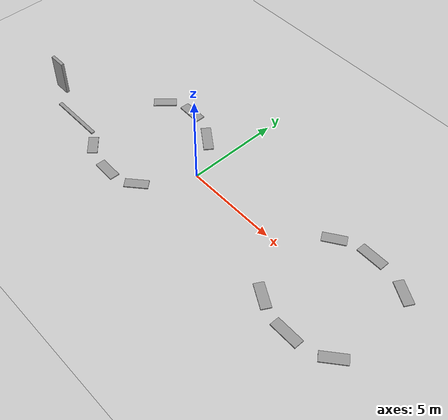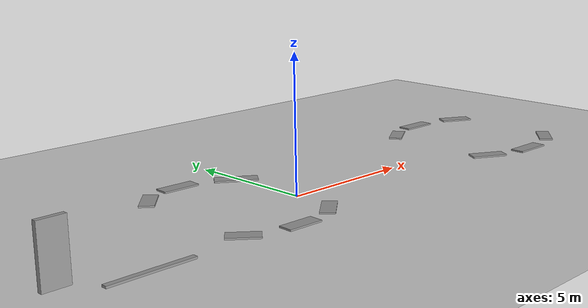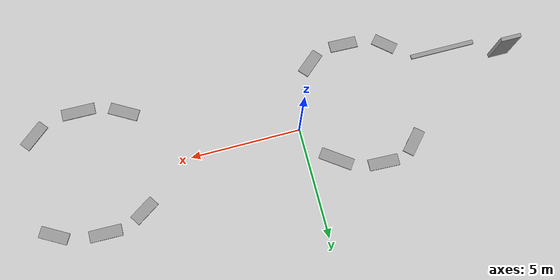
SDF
<sdf version="1.6">
 <world name="default">
  <model name="ground_plane">
   <static>1</static>
   <link name="link">
    <collision name="collision">
     <geometry><plane><normal>0 0 1</normal><size>100 100</size></plane></geometry>
     <surface><friction><ode><mu>100</mu><mu2>50</mu2></ode></friction></surface>
    </collision>
    <visual name="visual">
     <cast_shadows>0</cast_shadows>
     <geometry><plane><normal>0 0 1</normal><size>100 100</size></plane></geometry>
     <material>
      <script><uri>file://media/materials/scripts/gazebo.material</uri><name>Gazebo/Grey</name></script>
     </material>
    </visual>
   </link>
  </model>
  <model name="brick_box_3x1x3">
   <link name="link_1_clone_3">
    <pose>-0.307076 2.03145 0.5 0 -0 0</pose>
    <inertial>
     <mass>1</mass>
     <inertia>
      <ixx>0.166667</ixx>
      <ixy>0</ixy>
      <ixz>0</ixz>
      <iyy>0.166667</iyy>
      <iyz>0</iyz>
      <izz>0.166667</izz>
     </inertia>
    </inertial>
    <visual name="visual">
     <pose>0 0 -0.5 0 -0 0</pose>
     <geometry><box><size>3 0.2 0.1</size></box></geometry>
     <material>
      <lighting>1</lighting>
      <script><uri>file://media/materials/scripts/gazebo.material</uri><name>Gazebo/Grey</name></script>
      <ambient>0.3 0.3 0.3 1</ambient>
      <diffuse>0.7 0.7 0.7 1</diffuse>
      <specular>0.01 0.01 0.01 1</specular>
      <emissive>0 0 0 1</emissive>
      <shader type="vertex"><normal_map>__default__</normal_map></shader>
     </material>
    </visual>
    <collision name="collision">
     <pose>0 0 -0.5 0 -0 0</pose>
     <geometry><box><size>3 0.2 0.2</size></box></geometry>
     <surface>
      <friction>
       <ode><mu>1</mu><mu2>1</mu2><fdir1>0 0 0</fdir1><slip1>0</slip1><slip2>0</slip2></ode>
       <torsional>
        <coefficient>1</coefficient>
        <patch_radius>0</patch_radius>
        <surface_radius>0</surface_radius>
        <use_patch_radius>1</use_patch_radius>
        <ode><slip>0</slip></ode>
       </torsional>
      </friction>
      <bounce><restitution_coefficient>0</restitution_coefficient><threshold>1e+06</threshold></bounce>
      <contact>
       <collide_without_contact>0</collide_without_contact>
       <collide_without_contact_bitmask>1</collide_without_contact_bitmask>
       <collide_bitmask>1</collide_bitmask>
       <ode>
        <soft_cfm>0</soft_cfm>
        <soft_erp>0.2</soft_erp>
        <kp>1e+13</kp>
        <kd>1</kd>
        <max_vel>0.01</max_vel>
        <min_depth>0</min_depth>
       </ode>
       <bullet>
        <split_impulse>1</split_impulse>
        <split_impulse_penetration_threshold>-0.01</split_impulse_penetration_threshold>
        <soft_cfm>0</soft_cfm>
        <soft_erp>0.2</soft_erp>
        <kp>1e+13</kp>
        <kd>1</kd>
       </bullet>
      </contact>
     </surface>
    </collision>
   </link>
   <static>1</static>
   <pose>-7.10254 -4.10597 0 0 -0 0</pose>
  </model>
  <model name="unit_box_0_1_0">
   <link name="link">
    <pose>0.511454 -1.95803 -0.224295 0 -0 0.861543</pose>
    <inertial>
     <mass>0.0321225</mass>
     <inertia>
      <ixx>0.00313426</ixx>
      <ixy>0</ixy>
      <ixz>0</ixz>
      <iyy>0.000713489</iyy>
      <iyz>0</iyz>
      <izz>0.00382977</izz>
     </inertia>
    </inertial>
    <visual name="visual">
     <geometry><box><size>0.512987 1.08053 0.057955</size></box></geometry>
     <material>
      <script><name>Gazebo/Grey</name><uri>file://media/materials/scripts/gazebo.material</uri></script>
      <ambient>0.3 0.3 0.3 1</ambient>
      <diffuse>0.7 0.7 0.7 1</diffuse>
      <specular>0.01 0.01 0.01 1</specular>
      <emissive>0 0 0 1</emissive>
      <shader type="vertex"><normal_map>__default__</normal_map></shader>
     </material>
    </visual>
    <collision name="collision">
     <geometry><box><size>0.512987 1.08053 0.057955</size></box></geometry>
     <surface>
      <friction>
       <ode><mu>1</mu><mu2>1</mu2><fdir1>0 0 0</fdir1><slip1>0</slip1><slip2>0</slip2></ode>
       <torsional>
        <coefficient>1</coefficient>
        <patch_radius>0</patch_radius>
        <surface_radius>0</surface_radius>
        <use_patch_radius>1</use_patch_radius>
        <ode><slip>0</slip></ode>
       </torsional>
      </friction>
      <bounce><restitution_coefficient>0</restitution_coefficient><threshold>1e+06</threshold></bounce>
      <contact>
       <collide_without_contact>0</collide_without_contact>
       <collide_without_contact_bitmask>1</collide_without_contact_bitmask>
       <collide_bitmask>1</collide_bitmask>
       <ode>
        <soft_cfm>0</soft_cfm>
        <soft_erp>0.2</soft_erp>
        <kp>1e+13</kp>
        <kd>1</kd>
        <max_vel>0.01</max_vel>
        <min_depth>0</min_depth>
       </ode>
       <bullet>
        <split_impulse>1</split_impulse>
        <split_impulse_penetration_threshold>-0.01</split_impulse_penetration_threshold>
        <soft_cfm>0</soft_cfm>
        <soft_erp>0.2</soft_erp>
        <kp>1e+13</kp>
        <kd>1</kd>
       </bullet>
      </contact>
     </surface>
    </collision>
   </link>
   <link name="link_clone">
    <pose>2.34541 -2.41387 -0.224295 0 -0 1.54767</pose>
    <inertial>
     <mass>0.0371726</mass>
     <inertia>
      <ixx>0.00485357</ixx>
      <ixy>0</ixy>
      <ixz>0</ixz>
      <iyy>0.00082566</iyy>
      <iyz>0</iyz>
      <izz>0.00565843</izz>
     </inertia>
    </inertial>
    <visual name="visual">
     <geometry><box><size>0.512987 1.2504 0.057955</size></box></geometry>
     <material>
      <script><name>Gazebo/Grey</name><uri>file://media/materials/scripts/gazebo.material</uri></script>
      <ambient>0.3 0.3 0.3 1</ambient>
      <diffuse>0.7 0.7 0.7 1</diffuse>
      <specular>0.01 0.01 0.01 1</specular>
      <emissive>0 0 0 1</emissive>
      <shader type="vertex"><normal_map>__default__</normal_map></shader>
     </material>
    </visual>
    <collision name="collision">
     <geometry><box><size>0.512987 1.2504 0.057955</size></box></geometry>
     <surface>
      <friction>
       <ode><mu>1</mu><mu2>1</mu2><fdir1>0 0 0</fdir1><slip1>0</slip1><slip2>0</slip2></ode>
       <torsional>
        <coefficient>1</coefficient>
        <patch_radius>0</patch_radius>
        <surface_radius>0</surface_radius>
        <use_patch_radius>1</use_patch_radius>
        <ode><slip>0</slip></ode>
       </torsional>
      </friction>
      <bounce><restitution_coefficient>0</restitution_coefficient><threshold>1e+06</threshold></bounce>
      <contact>
       <collide_without_contact>0</collide_without_contact>
       <collide_without_contact_bitmask>1</collide_without_contact_bitmask>
       <collide_bitmask>1</collide_bitmask>
       <ode>
        <soft_cfm>0</soft_cfm>
        <soft_erp>0.2</soft_erp>
        <kp>1e+13</kp>
        <kd>1</kd>
        <max_vel>0.01</max_vel>
        <min_depth>0</min_depth>
       </ode>
       <bullet>
        <split_impulse>1</split_impulse>
        <split_impulse_penetration_threshold>-0.01</split_impulse_penetration_threshold>
        <soft_cfm>0</soft_cfm>
        <soft_erp>0.2</soft_erp>
        <kp>1e+13</kp>
        <kd>1</kd>
       </bullet>
      </contact>
     </surface>
    </collision>
   </link>
   <link name="link_clone_clone">
    <pose>4.02802 -1.90956 -0.224295 0 -0 2.29291</pose>
    <inertial>
     <mass>0.0358186</mass>
     <inertia>
      <ixx>0.00434301</ixx>
      <ixy>0</ixy>
      <ixz>0</ixz>
      <iyy>0.000795586</iyy>
      <iyz>0</iyz>
      <izz>0.00511856</izz>
     </inertia>
    </inertial>
    <visual name="visual">
     <geometry><box><size>0.512987 1.20486 0.057955</size></box></geometry>
     <material>
      <script><name>Gazebo/Grey</name><uri>file://media/materials/scripts/gazebo.material</uri></script>
      <ambient>0.3 0.3 0.3 1</ambient>
      <diffuse>0.7 0.7 0.7 1</diffuse>
      <specular>0.01 0.01 0.01 1</specular>
      <emissive>0 0 0 1</emissive>
      <shader type="vertex"><normal_map>__default__</normal_map></shader>
     </material>
    </visual>
    <collision name="collision">
     <geometry><box><size>0.512987 1.20486 0.057955</size></box></geometry>
     <surface>
      <friction>
       <ode><mu>1</mu><mu2>1</mu2><fdir1>0 0 0</fdir1><slip1>0</slip1><slip2>0</slip2></ode>
       <torsional>
        <coefficient>1</coefficient>
        <patch_radius>0</patch_radius>
        <surface_radius>0</surface_radius>
        <use_patch_radius>1</use_patch_radius>
        <ode><slip>0</slip></ode>
       </torsional>
      </friction>
      <bounce><restitution_coefficient>0</restitution_coefficient><threshold>1e+06</threshold></bounce>
      <contact>
       <collide_without_contact>0</collide_without_contact>
       <collide_without_contact_bitmask>1</collide_without_contact_bitmask>
       <collide_bitmask>1</collide_bitmask>
       <ode>
        <soft_cfm>0</soft_cfm>
        <soft_erp>0.2</soft_erp>
        <kp>1e+13</kp>
        <kd>1</kd>
        <max_vel>0.01</max_vel>
        <min_depth>0</min_depth>
       </ode>
       <bullet>
        <split_impulse>1</split_impulse>
        <split_impulse_penetration_threshold>-0.01</split_impulse_penetration_threshold>
        <soft_cfm>0</soft_cfm>
        <soft_erp>0.2</soft_erp>
        <kp>1e+13</kp>
        <kd>1</kd>
       </bullet>
      </contact>
     </surface>
    </collision>
   </link>
   <link name="link_clone_clone_clone">
    <pose>0.568221 2.76683 -0.224295 0 -0 2.41169</pose>
    <inertial>
     <mass>0.0358186</mass>
     <inertia>
      <ixx>0.00434301</ixx>
      <ixy>0</ixy>
      <ixz>0</ixz>
      <iyy>0.000795586</iyy>
      <iyz>0</iyz>
      <izz>0.00511856</izz>
     </inertia>
    </inertial>
    <visual name="visual">
     <geometry><box><size>0.512987 1.20486 0.057955</size></box></geometry>
     <material>
      <script><name>Gazebo/Grey</name><uri>file://media/materials/scripts/gazebo.material</uri></script>
      <ambient>0.3 0.3 0.3 1</ambient>
      <diffuse>0.7 0.7 0.7 1</diffuse>
      <specular>0.01 0.01 0.01 1</specular>
      <emissive>0 0 0 1</emissive>
      <shader type="vertex"><normal_map>__default__</normal_map></shader>
     </material>
    </visual>
    <collision name="collision">
     <geometry><box><size>0.512987 1.20486 0.057955</size></box></geometry>
     <surface>
      <friction>
       <ode><mu>1</mu><mu2>1</mu2><fdir1>0 0 0</fdir1><slip1>0</slip1><slip2>0</slip2></ode>
       <torsional>
        <coefficient>1</coefficient>
        <patch_radius>0</patch_radius>
        <surface_radius>0</surface_radius>
        <use_patch_radius>1</use_patch_radius>
        <ode><slip>0</slip></ode>
       </torsional>
      </friction>
      <bounce><restitution_coefficient>0</restitution_coefficient><threshold>1e+06</threshold></bounce>
      <contact>
       <collide_without_contact>0</collide_without_contact>
       <collide_without_contact_bitmask>1</collide_without_contact_bitmask>
       <collide_bitmask>1</collide_bitmask>
       <ode>
        <soft_cfm>0</soft_cfm>
        <soft_erp>0.2</soft_erp>
        <kp>1e+13</kp>
        <kd>1</kd>
        <max_vel>0.01</max_vel>
        <min_depth>0</min_depth>
       </ode>
       <bullet>
        <split_impulse>1</split_impulse>
        <split_impulse_penetration_threshold>-0.01</split_impulse_penetration_threshold>
        <soft_cfm>0</soft_cfm>
        <soft_erp>0.2</soft_erp>
        <kp>1e+13</kp>
        <kd>1</kd>
       </bullet>
      </contact>
     </surface>
    </collision>
   </link>
   <link name="link_clone_clone_clone_clone">
    <pose>2.12787 3.33108 -0.224295 0 -0 1.53724</pose>
    <inertial>
     <mass>0.0399724</mass>
     <inertia>
      <ixx>0.00603323</ixx>
      <ixy>0</ixy>
      <ixz>0</ixz>
      <iyy>0.000887849</iyy>
      <iyz>0</iyz>
      <izz>0.00689872</izz>
     </inertia>
    </inertial>
    <visual name="visual">
     <geometry><box><size>0.512987 1.34458 0.057955</size></box></geometry>
     <material>
      <script><name>Gazebo/Grey</name><uri>file://media/materials/scripts/gazebo.material</uri></script>
      <ambient>0.3 0.3 0.3 1</ambient>
      <diffuse>0.7 0.7 0.7 1</diffuse>
      <specular>0.01 0.01 0.01 1</specular>
      <emissive>0 0 0 1</emissive>
      <shader type="vertex"><normal_map>__default__</normal_map></shader>
     </material>
    </visual>
    <collision name="collision">
     <geometry><box><size>0.512987 1.34458 0.057955</size></box></geometry>
     <surface>
      <friction>
       <ode><mu>1</mu><mu2>1</mu2><fdir1>0 0 0</fdir1><slip1>0</slip1><slip2>0</slip2></ode>
       <torsional>
        <coefficient>1</coefficient>
        <patch_radius>0</patch_radius>
        <surface_radius>0</surface_radius>
        <use_patch_radius>1</use_patch_radius>
        <ode><slip>0</slip></ode>
       </torsional>
      </friction>
      <bounce><restitution_coefficient>0</restitution_coefficient><threshold>1e+06</threshold></bounce>
      <contact>
       <collide_without_contact>0</collide_without_contact>
       <collide_without_contact_bitmask>1</collide_without_contact_bitmask>
       <collide_bitmask>1</collide_bitmask>
       <ode>
        <soft_cfm>0</soft_cfm>
        <soft_erp>0.2</soft_erp>
        <kp>1e+13</kp>
        <kd>1</kd>
        <max_vel>0.01</max_vel>
        <min_depth>0</min_depth>
       </ode>
       <bullet>
        <split_impulse>1</split_impulse>
        <split_impulse_penetration_threshold>-0.01</split_impulse_penetration_threshold>
        <soft_cfm>0</soft_cfm>
        <soft_erp>0.2</soft_erp>
        <kp>1e+13</kp>
        <kd>1</kd>
       </bullet>
      </contact>
     </surface>
    </collision>
   </link>
   <link name="link_clone_clone_clone_clone_0">
    <pose>4.08515 2.65239 -0.224295 0 -0 0.950487</pose>
    <inertial>
     <mass>0.0447953</mass>
     <inertia>
      <ixx>0.00848789</ixx>
      <ixy>0</ixy>
      <ixz>0</ixz>
      <iyy>0.000994971</iyy>
      <iyz>0</iyz>
      <izz>0.00945781</izz>
     </inertia>
    </inertial>
    <visual name="visual">
     <geometry><box><size>0.512987 1.50681 0.057955</size></box></geometry>
     <material>
      <script><name>Gazebo/Grey</name><uri>file://media/materials/scripts/gazebo.material</uri></script>
      <ambient>0.3 0.3 0.3 1</ambient>
      <diffuse>0.7 0.7 0.7 1</diffuse>
      <specular>0.01 0.01 0.01 1</specular>
      <emissive>0 0 0 1</emissive>
      <shader type="vertex"><normal_map>__default__</normal_map></shader>
     </material>
    </visual>
    <collision name="collision">
     <geometry><box><size>0.512987 1.50681 0.057955</size></box></geometry>
     <surface>
      <friction>
       <ode><mu>1</mu><mu2>1</mu2><fdir1>0 0 0</fdir1><slip1>0</slip1><slip2>0</slip2></ode>
       <torsional>
        <coefficient>1</coefficient>
        <patch_radius>0</patch_radius>
        <surface_radius>0</surface_radius>
        <use_patch_radius>1</use_patch_radius>
        <ode><slip>0</slip></ode>
       </torsional>
      </friction>
      <bounce><restitution_coefficient>0</restitution_coefficient><threshold>1e+06</threshold></bounce>
      <contact>
       <collide_without_contact>0</collide_without_contact>
       <collide_without_contact_bitmask>1</collide_without_contact_bitmask>
       <collide_bitmask>1</collide_bitmask>
       <ode>
        <soft_cfm>0</soft_cfm>
        <soft_erp>0.2</soft_erp>
        <kp>1e+13</kp>
        <kd>1</kd>
        <max_vel>0.01</max_vel>
        <min_depth>0</min_depth>
       </ode>
       <bullet>
        <split_impulse>1</split_impulse>
        <split_impulse_penetration_threshold>-0.01</split_impulse_penetration_threshold>
        <soft_cfm>0</soft_cfm>
        <soft_erp>0.2</soft_erp>
        <kp>1e+13</kp>
        <kd>1</kd>
       </bullet>
      </contact>
     </surface>
    </collision>
   </link>
   <link name="link_clone_clone_clone_clone_1">
    <pose>12.68 -1.79314 -0.224295 0 -0 1.05377</pose>
    <inertial>
     <mass>0.0399977</mass>
     <inertia>
      <ixx>0.00604466</ixx>
      <ixy>0</ixy>
      <ixz>0</ixz>
      <iyy>0.000888411</iyy>
      <iyz>0</iyz>
      <izz>0.0069107</izz>
     </inertia>
    </inertial>
    <visual name="visual">
     <geometry><box><size>0.512987 1.34544 0.057955</size></box></geometry>
     <material>
      <script><name>Gazebo/Grey</name><uri>file://media/materials/scripts/gazebo.material</uri></script>
      <ambient>0.3 0.3 0.3 1</ambient>
      <diffuse>0.7 0.7 0.7 1</diffuse>
      <specular>0.01 0.01 0.01 1</specular>
      <emissive>0 0 0 1</emissive>
      <shader type="vertex"><normal_map>__default__</normal_map></shader>
     </material>
    </visual>
    <collision name="collision">
     <geometry><box><size>0.512987 1.34544 0.057955</size></box></geometry>
     <surface>
      <friction>
       <ode><mu>1</mu><mu2>1</mu2><fdir1>0 0 0</fdir1><slip1>0</slip1><slip2>0</slip2></ode>
       <torsional>
        <coefficient>1</coefficient>
        <patch_radius>0</patch_radius>
        <surface_radius>0</surface_radius>
        <use_patch_radius>1</use_patch_radius>
        <ode><slip>0</slip></ode>
       </torsional>
      </friction>
      <bounce><restitution_coefficient>0</restitution_coefficient><threshold>1e+06</threshold></bounce>
      <contact>
       <collide_without_contact>0</collide_without_contact>
       <collide_without_contact_bitmask>1</collide_without_contact_bitmask>
       <collide_bitmask>1</collide_bitmask>
       <ode>
        <soft_cfm>0</soft_cfm>
        <soft_erp>0.2</soft_erp>
        <kp>1e+13</kp>
        <kd>1</kd>
        <max_vel>0.01</max_vel>
        <min_depth>0</min_depth>
       </ode>
       <bullet>
        <split_impulse>1</split_impulse>
        <split_impulse_penetration_threshold>-0.01</split_impulse_penetration_threshold>
        <soft_cfm>0</soft_cfm>
        <soft_erp>0.2</soft_erp>
        <kp>1e+13</kp>
        <kd>1</kd>
       </bullet>
      </contact>
     </surface>
    </collision>
   </link>
   <link name="link_clone_clone_clone_clone_2">
    <pose>14.6473 -2.30104 -0.224295 0 -0 1.56097</pose>
    <inertial>
     <mass>0.0442801</mass>
     <inertia>
      <ixx>0.0081987</ixx>
      <ixy>0</ixy>
      <ixz>0</ixz>
      <iyy>0.000983529</iyy>
      <iyz>0</iyz>
      <izz>0.00915746</izz>
     </inertia>
    </inertial>
    <visual name="visual">
     <geometry><box><size>0.512987 1.48949 0.057955</size></box></geometry>
     <material>
      <script><name>Gazebo/Grey</name><uri>file://media/materials/scripts/gazebo.material</uri></script>
      <ambient>0.3 0.3 0.3 1</ambient>
      <diffuse>0.7 0.7 0.7 1</diffuse>
      <specular>0.01 0.01 0.01 1</specular>
      <emissive>0 0 0 1</emissive>
      <shader type="vertex"><normal_map>__default__</normal_map></shader>
     </material>
    </visual>
    <collision name="collision">
     <geometry><box><size>0.512987 1.48949 0.057955</size></box></geometry>
     <surface>
      <friction>
       <ode><mu>1</mu><mu2>1</mu2><fdir1>0 0 0</fdir1><slip1>0</slip1><slip2>0</slip2></ode>
       <torsional>
        <coefficient>1</coefficient>
        <patch_radius>0</patch_radius>
        <surface_radius>0</surface_radius>
        <use_patch_radius>1</use_patch_radius>
        <ode><slip>0</slip></ode>
       </torsional>
      </friction>
      <bounce><restitution_coefficient>0</restitution_coefficient><threshold>1e+06</threshold></bounce>
      <contact>
       <collide_without_contact>0</collide_without_contact>
       <collide_without_contact_bitmask>1</collide_without_contact_bitmask>
       <collide_bitmask>1</collide_bitmask>
       <ode>
        <soft_cfm>0</soft_cfm>
        <soft_erp>0.2</soft_erp>
        <kp>1e+13</kp>
        <kd>1</kd>
        <max_vel>0.01</max_vel>
        <min_depth>0</min_depth>
       </ode>
       <bullet>
        <split_impulse>1</split_impulse>
        <split_impulse_penetration_threshold>-0.01</split_impulse_penetration_threshold>
        <soft_cfm>0</soft_cfm>
        <soft_erp>0.2</soft_erp>
        <kp>1e+13</kp>
        <kd>1</kd>
       </bullet>
      </contact>
     </surface>
    </collision>
   </link>
   <link name="link_clone_clone_clone_clone_3">
    <pose>16.7541 -1.70065 -0.224295 0 -0 2.26691</pose>
    <inertial>
     <mass>0.0387649</mass>
     <inertia>
      <ixx>0.00550343</ixx>
      <ixy>0</ixy>
      <ixz>0</ixz>
      <iyy>0.000861027</iyy>
      <iyz>0</iyz>
      <izz>0.00634277</izz>
     </inertia>
    </inertial>
    <visual name="visual">
     <geometry><box><size>0.512987 1.30397 0.057955</size></box></geometry>
     <material>
      <script><name>Gazebo/Grey</name><uri>file://media/materials/scripts/gazebo.material</uri></script>
      <ambient>0.3 0.3 0.3 1</ambient>
      <diffuse>0.7 0.7 0.7 1</diffuse>
      <specular>0.01 0.01 0.01 1</specular>
      <emissive>0 0 0 1</emissive>
      <shader type="vertex"><normal_map>__default__</normal_map></shader>
     </material>
    </visual>
    <collision name="collision">
     <geometry><box><size>0.512987 1.30397 0.057955</size></box></geometry>
     <surface>
      <friction>
       <ode><mu>1</mu><mu2>1</mu2><fdir1>0 0 0</fdir1><slip1>0</slip1><slip2>0</slip2></ode>
       <torsional>
        <coefficient>1</coefficient>
        <patch_radius>0</patch_radius>
        <surface_radius>0</surface_radius>
        <use_patch_radius>1</use_patch_radius>
        <ode><slip>0</slip></ode>
       </torsional>
      </friction>
      <bounce><restitution_coefficient>0</restitution_coefficient><threshold>1e+06</threshold></bounce>
      <contact>
       <collide_without_contact>0</collide_without_contact>
       <collide_without_contact_bitmask>1</collide_without_contact_bitmask>
       <collide_bitmask>1</collide_bitmask>
       <ode>
        <soft_cfm>0</soft_cfm>
        <soft_erp>0.2</soft_erp>
        <kp>1e+13</kp>
        <kd>1</kd>
        <max_vel>0.01</max_vel>
        <min_depth>0</min_depth>
       </ode>
       <bullet>
        <split_impulse>1</split_impulse>
        <split_impulse_penetration_threshold>-0.01</split_impulse_penetration_threshold>
        <soft_cfm>0</soft_cfm>
        <soft_erp>0.2</soft_erp>
        <kp>1e+13</kp>
        <kd>1</kd>
       </bullet>
      </contact>
     </surface>
    </collision>
   </link>
   <link name="link_clone_clone_clone_clone_4">
    <pose>12.7356 2.77793 -0.224295 0 -0 2.15934</pose>
    <inertial>
     <mass>0.0358186</mass>
     <inertia>
      <ixx>0.00434301</ixx>
      <ixy>0</ixy>
      <ixz>0</ixz>
      <iyy>0.000795586</iyy>
      <iyz>0</iyz>
      <izz>0.00511856</izz>
     </inertia>
    </inertial>
    <visual name="visual">
     <geometry><box><size>0.512987 1.20486 0.057955</size></box></geometry>
     <material>
      <script><name>Gazebo/Grey</name><uri>file://media/materials/scripts/gazebo.material</uri></script>
      <ambient>0.3 0.3 0.3 1</ambient>
      <diffuse>0.7 0.7 0.7 1</diffuse>
      <specular>0.01 0.01 0.01 1</specular>
      <emissive>0 0 0 1</emissive>
      <shader type="vertex"><normal_map>__default__</normal_map></shader>
     </material>
    </visual>
    <collision name="collision">
     <geometry><box><size>0.512987 1.20486 0.057955</size></box></geometry>
     <surface>
      <friction>
       <ode><mu>1</mu><mu2>1</mu2><fdir1>0 0 0</fdir1><slip1>0</slip1><slip2>0</slip2></ode>
       <torsional>
        <coefficient>1</coefficient>
        <patch_radius>0</patch_radius>
        <surface_radius>0</surface_radius>
        <use_patch_radius>1</use_patch_radius>
        <ode><slip>0</slip></ode>
       </torsional>
      </friction>
      <bounce><restitution_coefficient>0</restitution_coefficient><threshold>1e+06</threshold></bounce>
      <contact>
       <collide_without_contact>0</collide_without_contact>
       <collide_without_contact_bitmask>1</collide_without_contact_bitmask>
       <collide_bitmask>1</collide_bitmask>
       <ode>
        <soft_cfm>0</soft_cfm>
        <soft_erp>0.2</soft_erp>
        <kp>1e+13</kp>
        <kd>1</kd>
        <max_vel>0.01</max_vel>
        <min_depth>0</min_depth>
       </ode>
       <bullet>
        <split_impulse>1</split_impulse>
        <split_impulse_penetration_threshold>-0.01</split_impulse_penetration_threshold>
        <soft_cfm>0</soft_cfm>
        <soft_erp>0.2</soft_erp>
        <kp>1e+13</kp>
        <kd>1</kd>
       </bullet>
      </contact>
     </surface>
    </collision>
   </link>
   <link name="link_clone_clone_clone_clone_5">
    <pose>14.5496 3.31623 -0.224295 0 -0 1.55886</pose>
    <inertial>
     <mass>0.0424496</mass>
     <inertia>
      <ixx>0.0072243</ixx>
      <ixy>0</ixy>
      <ixz>0</ixz>
      <iyy>0.00094287</iyy>
      <iyz>0</iyz>
      <izz>0.00814343</izz>
     </inertia>
    </inertial>
    <visual name="visual">
     <geometry><box><size>0.512987 1.42791 0.057955</size></box></geometry>
     <material>
      <script><name>Gazebo/Grey</name><uri>file://media/materials/scripts/gazebo.material</uri></script>
      <ambient>0.3 0.3 0.3 1</ambient>
      <diffuse>0.7 0.7 0.7 1</diffuse>
      <specular>0.01 0.01 0.01 1</specular>
      <emissive>0 0 0 1</emissive>
      <shader type="vertex"><normal_map>__default__</normal_map></shader>
     </material>
    </visual>
    <collision name="collision">
     <geometry><box><size>0.512987 1.42791 0.057955</size></box></geometry>
     <surface>
      <friction>
       <ode><mu>1</mu><mu2>1</mu2><fdir1>0 0 0</fdir1><slip1>0</slip1><slip2>0</slip2></ode>
       <torsional>
        <coefficient>1</coefficient>
        <patch_radius>0</patch_radius>
        <surface_radius>0</surface_radius>
        <use_patch_radius>1</use_patch_radius>
        <ode><slip>0</slip></ode>
       </torsional>
      </friction>
      <bounce><restitution_coefficient>0</restitution_coefficient><threshold>1e+06</threshold></bounce>
      <contact>
       <collide_without_contact>0</collide_without_contact>
       <collide_without_contact_bitmask>1</collide_without_contact_bitmask>
       <collide_bitmask>1</collide_bitmask>
       <ode>
        <soft_cfm>0</soft_cfm>
        <soft_erp>0.2</soft_erp>
        <kp>1e+13</kp>
        <kd>1</kd>
        <max_vel>0.01</max_vel>
        <min_depth>0</min_depth>
       </ode>
       <bullet>
        <split_impulse>1</split_impulse>
        <split_impulse_penetration_threshold>-0.01</split_impulse_penetration_threshold>
        <soft_cfm>0</soft_cfm>
        <soft_erp>0.2</soft_erp>
        <kp>1e+13</kp>
        <kd>1</kd>
       </bullet>
      </contact>
     </surface>
    </collision>
   </link>
   <link name="link_clone_clone_clone_clone_6">
    <pose>16.7079 2.85296 -0.224295 0 -0 1.0625</pose>
    <inertial>
     <mass>0.0382707</mass>
     <inertia>
      <ixx>0.00529589</ixx>
      <ixy>0</ixy>
      <ixz>0</ixz>
      <iyy>0.000850051</iyy>
      <iyz>0</iyz>
      <izz>0.00612454</izz>
     </inertia>
    </inertial>
    <visual name="visual">
     <geometry><box><size>0.512987 1.28734 0.057955</size></box></geometry>
     <material>
      <script><name>Gazebo/Grey</name><uri>file://media/materials/scripts/gazebo.material</uri></script>
      <ambient>0.3 0.3 0.3 1</ambient>
      <diffuse>0.7 0.7 0.7 1</diffuse>
      <specular>0.01 0.01 0.01 1</specular>
      <emissive>0 0 0 1</emissive>
      <shader type="vertex"><normal_map>__default__</normal_map></shader>
     </material>
    </visual>
    <collision name="collision">
     <geometry><box><size>0.512987 1.28734 0.057955</size></box></geometry>
     <surface>
      <friction>
       <ode><mu>1</mu><mu2>1</mu2><fdir1>0 0 0</fdir1><slip1>0</slip1><slip2>0</slip2></ode>
       <torsional>
        <coefficient>1</coefficient>
        <patch_radius>0</patch_radius>
        <surface_radius>0</surface_radius>
        <use_patch_radius>1</use_patch_radius>
        <ode><slip>0</slip></ode>
       </torsional>
      </friction>
      <bounce><restitution_coefficient>0</restitution_coefficient><threshold>1e+06</threshold></bounce>
      <contact>
       <collide_without_contact>0</collide_without_contact>
       <collide_without_contact_bitmask>1</collide_without_contact_bitmask>
       <collide_bitmask>1</collide_bitmask>
       <ode>
        <soft_cfm>0</soft_cfm>
        <soft_erp>0.2</soft_erp>
        <kp>1e+13</kp>
        <kd>1</kd>
        <max_vel>0.01</max_vel>
        <min_depth>0</min_depth>
       </ode>
       <bullet>
        <split_impulse>1</split_impulse>
        <split_impulse_penetration_threshold>-0.01</split_impulse_penetration_threshold>
        <soft_cfm>0</soft_cfm>
        <soft_erp>0.2</soft_erp>
        <kp>1e+13</kp>
        <kd>1</kd>
       </bullet>
      </contact>
     </surface>
    </collision>
   </link>
   <static>0</static>
   <pose>-5.2737 -0.876208 0.753269 -1e-06 1e-06 -0.000593</pose>
  </model>
  <model name="CV1_giardino2">
   <link name="Door_3">
    <pose>-12.296 -1.14905 0 0 -0 0</pose>
    <visual name="Door_3_Visual">
     <pose>0 0 1 0 -0 0</pose>
     <geometry><box><size>0.9 0.17 2</size></box></geometry>
     <material>
      <script><uri>file://media/materials/scripts/gazebo.material</uri><name>Gazebo/Grey</name></script>
      <ambient>0.3 0.3 0.3 1</ambient>
      <diffuse>0.7 0.7 0.7 1</diffuse>
      <specular>0.01 0.01 0.01 1</specular>
      <emissive>0 0 0 1</emissive>
     </material>
    </visual>
    <collision name="Door_3_Collision">
     <pose>0 0 1 0 -0 0</pose>
     <geometry><box><size>0.9 0.17 2</size></box></geometry>
     <surface>
      <friction>
       <ode><mu>1</mu><mu2>1</mu2><fdir1>0 0 0</fdir1><slip1>0</slip1><slip2>0</slip2></ode>
       <torsional>
        <coefficient>1</coefficient>
        <patch_radius>0</patch_radius>
        <surface_radius>0</surface_radius>
        <use_patch_radius>1</use_patch_radius>
        <ode><slip>0</slip></ode>
       </torsional>
      </friction>
      <bounce><restitution_coefficient>0</restitution_coefficient><threshold>1e+06</threshold></bounce>
      <contact>
       <collide_without_contact>0</collide_without_contact>
       <collide_without_contact_bitmask>1</collide_without_contact_bitmask>
       <collide_bitmask>1</collide_bitmask>
       <ode>
        <soft_cfm>0</soft_cfm>
        <soft_erp>0.2</soft_erp>
        <kp>1e+13</kp>
        <kd>1</kd>
        <max_vel>0.01</max_vel>
        <min_depth>0</min_depth>
       </ode>
       <bullet>
        <split_impulse>1</split_impulse>
        <split_impulse_penetration_threshold>-0.01</split_impulse_penetration_threshold>
        <soft_cfm>0</soft_cfm>
        <soft_erp>0.2</soft_erp>
        <kp>1e+13</kp>
        <kd>1</kd>
       </bullet>
      </contact>
     </surface>
    </collision>
   </link>
   <static>1</static>
   <pose>2.46902 -0.09324 0 0 -0 0</pose>
  </model>
 </world>
</sdf>
